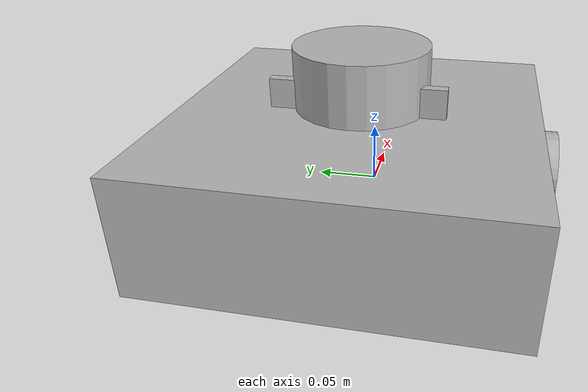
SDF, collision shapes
<?xml version="1.0" ?>
<sdf version="1.4">
  <model name="turtlebot3_waffle_pi">

    <link name="base">

      <inertial>
        <pose>-0.064 0 0.048 0 0 0</pose>
        <inertia>
          <ixx>0.001</ixx>
          <ixy>0.000</ixy>
          <ixz>0.000</ixz>
          <iyy>0.001</iyy>
          <iyz>0.000</iyz>
          <izz>0.001</izz>
        </inertia>
        <mass>1.0</mass>
      </inertial>

      <collision name="base_collision">
        <pose>-0.064 0 0.048 0 0 0</pose>
        <geometry>
          <box>
            <size>0.265 0.265 0.089</size>
          </box>
        </geometry>
      </collision>

      <visual name="base_visual">
        <pose>-0.064 0 0 0 0 0</pose>
        <geometry>
          <mesh>
            <uri>model://turtlebot3_waffle_pi/meshes/waffle_pi_base.dae</uri>
            <scale>0.001 0.001 0.001</scale>
          </mesh>
        </geometry>
      </visual>

      <collision name="right_caster_collision">
        <pose>-0.177 -0.064 -0.004 0 0 0</pose>
        <geometry>
          <sphere>
            <radius>0.005000</radius>
          </sphere>
        </geometry>
        <surface>
          <friction>
            <ode>
              <mu>100000.0</mu>
              <mu2>100000.0</mu2>
              <fdir1>0 0 0</fdir1>
              <slip1>0</slip1>
              <slip2>0</slip2>
            </ode>
          </friction>
        </surface>
      </collision>

      <collision name="left_caster_collision">
        <pose>-0.177 0.064 -0.004 0 0 0</pose>
        <geometry>
          <sphere>
            <radius>0.005000</radius>
          </sphere>
        </geometry>
        <surface>
          <friction>
            <ode>
              <mu>100000.0</mu>
              <mu2>100000.0</mu2>
              <fdir1>0 0 0</fdir1>
              <slip1>0</slip1>
              <slip2>0</slip2>
            </ode>
          </friction>
        </surface>
      </collision>
    </link>

    <link name="ar_tag">

      <inertial>
        <pose>-0.064 0 0.048 0 0 0</pose>
        <inertia>
          <ixx>0.001</ixx>
          <ixy>0.000</ixy>
          <ixz>0.000</ixz>
          <iyy>0.001</iyy>
          <iyz>0.000</iyz>
          <izz>0.001</izz>
        </inertia>
        <mass>1.0</mass>
      </inertial>

      <collision name="ar_tag_collision">
        <pose>-0.064 0 0.048 0 0 0</pose>
        <geometry>
          <box>
            <size>0.265 0.265 0.089</size>
          </box>
        </geometry>
      </collision>

      <visual name="ar_tag_visual">
        <pose>-0.064 0 0 0 0 0</pose>
        <geometry>
          <mesh>
            <uri>model://turtlebot3_waffle_pi/meshes/ar_tag_0_to_3.dae</uri>
            <scale>0.001 0.001 0.001</scale>
          </mesh>
        </geometry>
      </visual>

      <collision name="ar_tag_right_caster_collision">
        <pose>-0.177 -0.064 -0.004 0 0 0</pose>
        <geometry>
          <sphere>
            <radius>0.005000</radius>
          </sphere>
        </geometry>
        <surface>
          <friction>
            <ode>
              <mu>100000.0</mu>
              <mu2>100000.0</mu2>
              <fdir1>0 0 0</fdir1>
              <slip1>0</slip1>
              <slip2>0</slip2>
            </ode>
          </friction>
        </surface>
      </collision>

      <collision name="ar_tag_left_caster_collision">
        <pose>-0.177 0.064 -0.004 0 0 0</pose>
        <geometry>
          <sphere>
            <radius>0.005000</radius>
          </sphere>
        </geometry>
        <surface>
          <friction>
            <ode>
              <mu>100000.0</mu>
              <mu2>100000.0</mu2>
              <fdir1>0 0 0</fdir1>
              <slip1>0</slip1>
              <slip2>0</slip2>
            </ode>
          </friction>
        </surface>
      </collision>
    </link>

    <link name="lidar">
      <inertial>
        <pose>-0.052 0 0.111 0 0 0</pose>
        <inertia>
          <ixx>0.001</ixx>
          <ixy>0.000</ixy>
          <ixz>0.000</ixz>
          <iyy>0.001</iyy>
          <iyz>0.000</iyz>
          <izz>0.001</izz>
        </inertia>
        <mass>0.125</mass>
      </inertial>

      <collision name="lidar_sensor_collision">
        <pose>-0.052 0 0.111 0 0 0</pose>
        <geometry>
          <cylinder>
            <radius>0.0508</radius>
            <length>0.055</length>
          </cylinder>
        </geometry>
      </collision>

      <visual name="lidar_sensor_visual">
        <pose>-0.064 0 0.121 0 0 0</pose>
        <geometry>
          <mesh>
            <uri>model://turtlebot3_waffle_pi/meshes/lds.dae</uri>
            <scale>0.001 0.001 0.001</scale>
          </mesh>
        </geometry>
      </visual>

      <sensor name="hls_lfcd_lds" type="ray">
        <always_on>1</always_on>
        <visualize>0</visualize>
        <pose>-0.064 0 0.121 0 0 0</pose>
        <update_rate>1800</update_rate>
        <ray>
          <scan>
            <horizontal>
              <samples>360</samples>
              <resolution>1.000000</resolution>
              <min_angle>0.000000</min_angle>
              <max_angle>6.280000</max_angle>
            </horizontal>
          </scan>
          <range>
            <min>0.120000</min>
            <max>3.5</max>
            <resolution>0.015000</resolution>
          </range>
          <noise>
            <type>gaussian</type>
            <mean>0.0</mean>
            <stddev>0.01</stddev>
          </noise>
        </ray>
      </sensor>
    </link>

    <link name="image">
      <inertial>
        <pose>-0.069 0 0.104 0 0 0</pose>
        <inertia>
          <ixx>0.001</ixx>
          <ixy>0.000</ixy>
          <ixz>0.000</ixz>
          <iyy>0.001</iyy>
          <iyz>0.000</iyz>
          <izz>0.001</izz>
        </inertia>
        <mass>0.035</mass>
      </inertial>

      <collision name="image_collision">
        <pose>-0.069 0 0.104 0 0 0</pose>
        <geometry>
          <box>
            <size>0.008 0.130 0.022</size>
          </box>
        </geometry>
      </collision>

      <sensor name="raspberry_pi_cam" type="camera">
        <pose>0.076 0 0.094 0 0 0</pose>
        <always_on>1</always_on>
        <visualize>0</visualize>
        <update_rate>30</update_rate>
        <camera>
            <horizontal_fov>1.085595</horizontal_fov>
            <image>
                <width>640</width>
                <height>480</height>
                <format>R8G8B8</format>
            </image>
            <depth_camera></depth_camera>
            <clip>
                <near>0.02</near>
                <far>300</far>
            </clip>
        </camera>
      </sensor>
    </link>

    <link name="left_wheel">

      <inertial>
        <pose>0.0 0.144 0.023 -1.57 0 0</pose>
        <inertia>
          <ixx>0.001</ixx>
          <ixy>0.000</ixy>
          <ixz>0.000</ixz>
          <iyy>0.001</iyy>
          <iyz>0.000</iyz>
          <izz>0.001</izz>
        </inertia>
        <mass>0.1</mass>
      </inertial>

      <collision name="left_wheel_collision">
        <pose>0.0 0.144 0.023 -1.57 0 0</pose>
        <geometry>
          <cylinder>
            <radius>0.033</radius>
            <length>0.018</length>
          </cylinder>
        </geometry>
          <surface>
            <friction>
              <ode>
                <mu>100000.0</mu>
                <mu2>100000.0</mu2>
                <fdir1>0 0 0</fdir1>
                <slip1>0.0</slip1>
                <slip2>0.0</slip2>
              </ode>
          </friction>
        </surface>
      </collision>

      <visual name="left_wheel_visual">
        <pose>0.0 0.144 0.023 0 0 0</pose>
        <geometry>
          <mesh>
            <uri>model://turtlebot3_waffle_pi/meshes/left_tire.dae</uri>
            <scale>0.001 0.001 0.001</scale>
          </mesh>
        </geometry>
      </visual>
    </link>

    <link name="right_wheel">

      <inertial>
        <pose>0.0 -0.144 0.023 -1.57 0 0</pose>
        <inertia>
          <ixx>0.001</ixx>
          <ixy>0.000</ixy>
          <ixz>0.000</ixz>
          <iyy>0.001</iyy>
          <iyz>0.000</iyz>
          <izz>0.001</izz>
        </inertia>
        <mass>0.1</mass>
      </inertial>

      <collision name="right_wheel_collision">
        <pose>0.0 -0.144 0.023 -1.57 0 0</pose>
        <geometry>
          <cylinder>
            <radius>0.033</radius>
            <length>0.018</length>
          </cylinder>
        </geometry>
          <surface>
            <friction>
              <ode>
                <mu>100000.0</mu>
                <mu2>100000.0</mu2>
                <fdir1>0 0 0</fdir1>
                <slip1>0.0</slip1>
                <slip2>0.0</slip2>
              </ode>
          </friction>
        </surface>
      </collision>

      <visual name="right_wheel_visual">
        <pose>0.0 -0.144 0.023 0 0 0</pose>
        <geometry>
          <mesh>
            <uri>model://turtlebot3_waffle_pi/meshes/right_tire.dae</uri>
            <scale>0.001 0.001 0.001</scale>
          </mesh>
        </geometry>
      </visual>
    </link>

    <joint name="left_wheel_joint" type="revolute">
      <parent>base</parent>
      <child>left_wheel</child>
      <pose>0.0 0.144 0.023 -1.57 0 0</pose>
      <axis>
        <xyz>0 1 0</xyz>
      </axis>
    </joint>

    <joint name="right_wheel_joint" type="revolute">
      <parent>base</parent>
      <child>right_wheel</child>
      <pose>0.0 -0.144 0.023 -1.57 0 0</pose>
      <axis>
        <xyz>0 1 0</xyz>
      </axis>
    </joint>

    <joint name="lidar_joint" type="fixed">
      <parent>base</parent>
      <child>lidar</child>
      <pose>-0.064 0 0.121 0 0 0</pose>
      <axis>
        <xyz>0 0 1</xyz>
        <use_parent_model_frame>true</use_parent_model_frame>
      </axis>
    </joint>

    <joint name="image_joint" type="fixed">
      <parent>base</parent>
      <child>image</child>
      <pose>0.064 -0.065 0.094 0 0 0</pose>
      <axis>
        <xyz>0 0 1</xyz>
        <use_parent_model_frame>true</use_parent_model_frame>
      </axis>
    </joint>

  </model>
</sdf>
